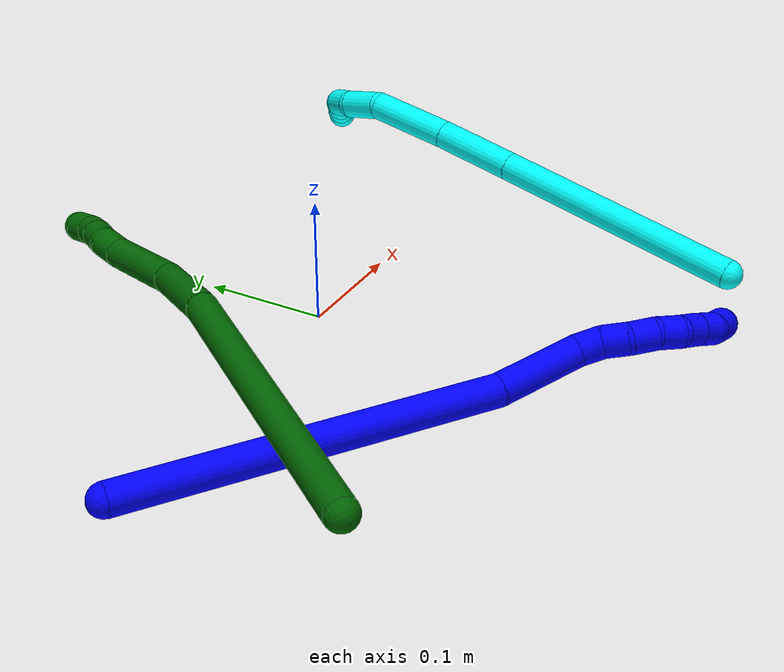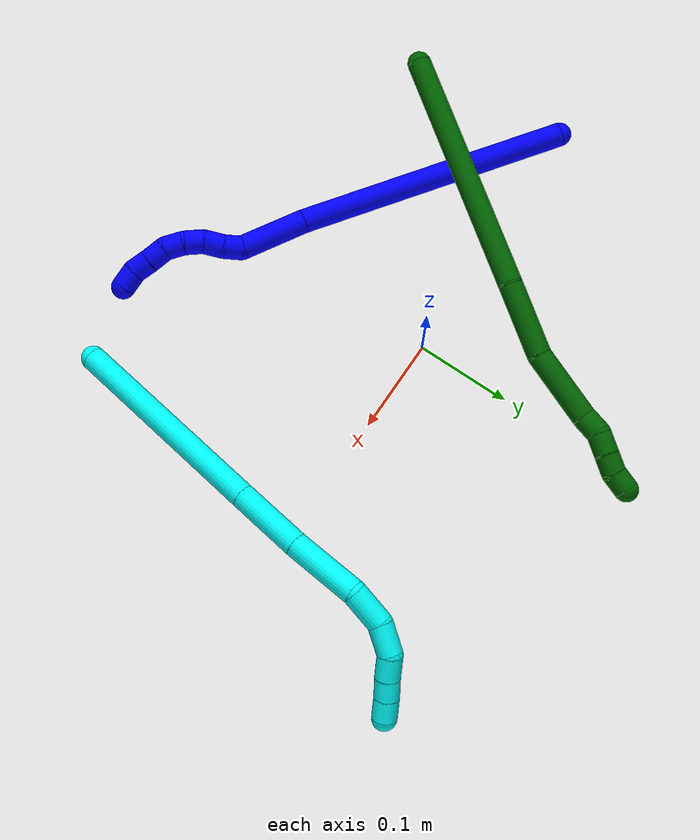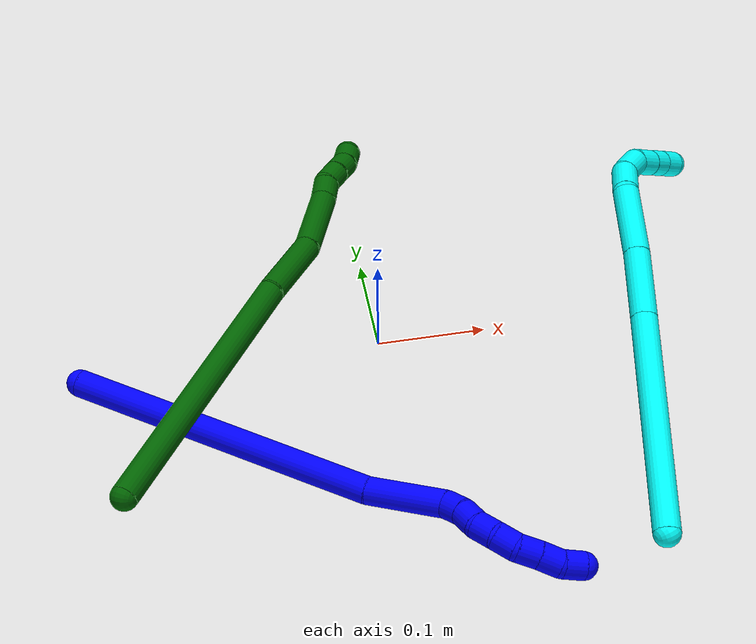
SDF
<sdf version="1.7">
 <world name="default">
  <model name="photoneo_s_sensor">
   <static>1</static>
   <pose>0 0 2 1.57079 1.57079 3.14159</pose>
   <link name="link">
    <inertial><mass>0.1</mass></inertial>
    <sensor name="sensor" type="depth">
     <update_rate>30</update_rate>
     <camera>
      <horizontal_fov>1.22</horizontal_fov>
      <image><width>1920</width><height>1200</height><format>B8G8R8</format></image>
      <clip><near>0.1</near><far>4</far></clip>
      <depth_camera><output>points</output></depth_camera>
     </camera>
     <plugin name="camera_plugin" filename="libgazebo_ros_depth_camera.so">
      <baseline>0.2</baseline>
      <alwaysOn>1</alwaysOn>
      <updateRate>0.0</updateRate>
      <cameraName>camera_ir</cameraName>
      <imageTopicName>/camera/color/image_raw</imageTopicName>
      <cameraInfoTopicName>/camera/color/camera_info</cameraInfoTopicName>
      <depthImageTopicName>/camera/depth/image_raw</depthImageTopicName>
      <depthImageCameraInfoTopicName>/camera/depth/camera_info</depthImageCameraInfoTopicName>
      <pointCloudTopicName>/camera/depth/points</pointCloudTopicName>
      <frameName>fr_optical</frameName>
      <pointCloudCutoff>0.1</pointCloudCutoff>
      <pointCloudCutoffMax>2.0</pointCloudCutoffMax>
      <distortionK1>0</distortionK1>
      <distortionK2>0</distortionK2>
      <distortionK3>0</distortionK3>
      <distortionT1>0</distortionT1>
      <distortionT2>0</distortionT2>
      <CxPrime>0</CxPrime>
      <Cx>0</Cx>
      <Cy>0</Cy>
      <focalLength>0</focalLength>
      <hackBaseline>0</hackBaseline>
     </plugin>
    </sensor>
   </link>
  </model>
  <model name="1">
   <static>0</static>
   <link name="1">
    <collision name="collision-cylinder-e_1_1_4">
     <pose>0.105713 -0.023299 -0.095323 2.90187 0.822584 2.60277</pose>
     <geometry><cylinder><radius>0.0125</radius><length>0.288475</length></cylinder></geometry>
     <surface>
      <friction><ode><mu>1.16</mu><mu2>1.16</mu2><slip1>0</slip1><slip2>0</slip2></ode></friction>
      <contact><ode><kp>1e+06</kp><kd>1</kd><max_vel>0</max_vel><min_depth>0.001</min_depth></ode></contact>
     </surface>
    </collision>
    <visual name="visual-cylinder-e_1_1_4">
     <pose>0.105713 -0.023299 -0.095323 2.90187 0.822584 2.60277</pose>
     <geometry><cylinder><radius>0.0125</radius><length>0.288475</length></cylinder></geometry>
     <material><ambient>0 0 1 1</ambient></material>
    </visual>
    <collision name="collision-cylinder-e_2_4_5">
     <pose>0.234466 -0.057752 -0.215594 2.72114 0.700489 2.08428</pose>
     <geometry><cylinder><radius>0.0125</radius><length>0.071491</length></cylinder></geometry>
     <surface>
      <friction><ode><mu>1.16</mu><mu2>1.16</mu2><slip1>0</slip1><slip2>0</slip2></ode></friction>
      <contact><ode><kp>1e+06</kp><kd>1</kd><max_vel>0</max_vel><min_depth>0.001</min_depth></ode></contact>
     </surface>
    </collision>
    <visual name="visual-cylinder-e_2_4_5">
     <pose>0.234466 -0.057752 -0.215594 2.72114 0.700489 2.08428</pose>
     <geometry><cylinder><radius>0.0125</radius><length>0.071491</length></cylinder></geometry>
     <material><ambient>0 0 1 1</ambient></material>
    </visual>
    <collision name="collision-cylinder-e_3_5_6">
     <pose>0.261924 -0.068195 -0.249502 -3.06228 0.456721 -2.8034</pose>
     <geometry><cylinder><radius>0.0125</radius><length>0.020028</length></cylinder></geometry>
     <surface>
      <friction><ode><mu>1.16</mu><mu2>1.16</mu2><slip1>0</slip1><slip2>0</slip2></ode></friction>
      <contact><ode><kp>1e+06</kp><kd>1</kd><max_vel>0</max_vel><min_depth>0.001</min_depth></ode></contact>
     </surface>
    </collision>
    <visual name="visual-cylinder-e_3_5_6">
     <pose>0.261924 -0.068195 -0.249502 -3.06228 0.456721 -2.8034</pose>
     <geometry><cylinder><radius>0.0125</radius><length>0.020028</length></cylinder></geometry>
     <material><ambient>0 0 1 1</ambient></material>
    </visual>
    <collision name="collision-cylinder-e_4_6_7">
     <pose>0.270888 -0.064438 -0.266832 -2.79275 0.472035 -1.87693</pose>
     <geometry><cylinder><radius>0.0125</radius><length>0.020003</length></cylinder></geometry>
     <surface>
      <friction><ode><mu>1.16</mu><mu2>1.16</mu2><slip1>0</slip1><slip2>0</slip2></ode></friction>
      <contact><ode><kp>1e+06</kp><kd>1</kd><max_vel>0</max_vel><min_depth>0.001</min_depth></ode></contact>
     </surface>
    </collision>
    <visual name="visual-cylinder-e_4_6_7">
     <pose>0.270888 -0.064438 -0.266832 -2.79275 0.472035 -1.87693</pose>
     <geometry><cylinder><radius>0.0125</radius><length>0.020003</length></cylinder></geometry>
     <material><ambient>0 0 1 1</ambient></material>
    </visual>
    <collision name="collision-cylinder-e_5_7_8">
     <pose>0.281805 -0.060933 -0.282899 -3.08183 0.690535 -2.97578</pose>
     <geometry><cylinder><radius>0.0125</radius><length>0.02</length></cylinder></geometry>
     <surface>
      <friction><ode><mu>1.16</mu><mu2>1.16</mu2><slip1>0</slip1><slip2>0</slip2></ode></friction>
      <contact><ode><kp>1e+06</kp><kd>1</kd><max_vel>0</max_vel><min_depth>0.001</min_depth></ode></contact>
     </surface>
    </collision>
    <visual name="visual-cylinder-e_5_7_8">
     <pose>0.281805 -0.060933 -0.282899 -3.08183 0.690535 -2.97578</pose>
     <geometry><cylinder><radius>0.0125</radius><length>0.02</length></cylinder></geometry>
     <material><ambient>0 0 1 1</ambient></material>
    </visual>
    <collision name="collision-cylinder-e_6_8_9">
     <pose>0.296319 -0.060786 -0.296389 3.08754 0.951743 3.03679</pose>
     <geometry><cylinder><radius>0.0125</radius><length>0.020002</length></cylinder></geometry>
     <surface>
      <friction><ode><mu>1.16</mu><mu2>1.16</mu2><slip1>0</slip1><slip2>0</slip2></ode></friction>
      <contact><ode><kp>1e+06</kp><kd>1</kd><max_vel>0</max_vel><min_depth>0.001</min_depth></ode></contact>
     </surface>
    </collision>
    <visual name="visual-cylinder-e_6_8_9">
     <pose>0.296319 -0.060786 -0.296389 3.08754 0.951743 3.03679</pose>
     <geometry><cylinder><radius>0.0125</radius><length>0.020002</length></cylinder></geometry>
     <material><ambient>0 0 1 1</ambient></material>
    </visual>
    <collision name="collision-cylinder-e_7_9_10">
     <pose>0.313298 -0.064225 -0.305677 2.41183 1.08288 2.00983</pose>
     <geometry><cylinder><radius>0.0125</radius><length>0.02</length></cylinder></geometry>
     <surface>
      <friction><ode><mu>1.16</mu><mu2>1.16</mu2><slip1>0</slip1><slip2>0</slip2></ode></friction>
      <contact><ode><kp>1e+06</kp><kd>1</kd><max_vel>0</max_vel><min_depth>0.001</min_depth></ode></contact>
     </surface>
    </collision>
    <visual name="visual-cylinder-e_7_9_10">
     <pose>0.313298 -0.064225 -0.305677 2.41183 1.08288 2.00983</pose>
     <geometry><cylinder><radius>0.0125</radius><length>0.02</length></cylinder></geometry>
     <material><ambient>0 0 1 1</ambient></material>
    </visual>
    <collision name="collision-cylinder-e_8_10_11">
     <pose>0.331128 -0.069825 -0.312769 2.53903 1.1189 2.22032</pose>
     <geometry><cylinder><radius>0.0125</radius><length>0.02</length></cylinder></geometry>
     <surface>
      <friction><ode><mu>1.16</mu><mu2>1.16</mu2><slip1>0</slip1><slip2>0</slip2></ode></friction>
      <contact><ode><kp>1e+06</kp><kd>1</kd><max_vel>0</max_vel><min_depth>0.001</min_depth></ode></contact>
     </surface>
    </collision>
    <visual name="visual-cylinder-e_8_10_11">
     <pose>0.331128 -0.069825 -0.312769 2.53903 1.1189 2.22032</pose>
     <geometry><cylinder><radius>0.0125</radius><length>0.02</length></cylinder></geometry>
     <material><ambient>0 0 1 1</ambient></material>
    </visual>
    <collision name="collision-cylinder-e_9_11_2">
     <pose>0.348244 -0.077812 -0.318287 1.90602 0.94759 1.25016</pose>
     <geometry><cylinder><radius>0.0125</radius><length>0.02</length></cylinder></geometry>
     <surface>
      <friction><ode><mu>1.16</mu><mu2>1.16</mu2><slip1>0</slip1><slip2>0</slip2></ode></friction>
      <contact><ode><kp>1e+06</kp><kd>1</kd><max_vel>0</max_vel><min_depth>0.001</min_depth></ode></contact>
     </surface>
    </collision>
    <visual name="visual-cylinder-e_9_11_2">
     <pose>0.348244 -0.077812 -0.318287 1.90602 0.94759 1.25016</pose>
     <geometry><cylinder><radius>0.0125</radius><length>0.02</length></cylinder></geometry>
     <material><ambient>0 0 1 1</ambient></material>
    </visual>
    <collision name="collision-sphere-2">
     <pose>0.356365 -0.083324 -0.320207 0 -0 0</pose>
     <geometry><sphere><radius>0.0125</radius></sphere></geometry>
     <surface>
      <friction><ode><mu>1.16</mu><mu2>1.16</mu2><slip1>0</slip1><slip2>0</slip2></ode></friction>
      <contact><ode><kp>1e+06</kp><kd>1</kd><max_vel>0</max_vel><min_depth>0.001</min_depth></ode></contact>
     </surface>
    </collision>
    <visual name="visual-sphere-2">
     <pose>0.356365 -0.083324 -0.320207 0 -0 0</pose>
     <geometry><sphere><radius>0.0125</radius></sphere></geometry>
     <material><ambient>0 0 1 1</ambient></material>
    </visual>
    <collision name="collision-sphere-11">
     <pose>0.340124 -0.0723 -0.316367 0 -0 0</pose>
     <geometry><sphere><radius>0.0125</radius></sphere></geometry>
     <surface>
      <friction><ode><mu>1.16</mu><mu2>1.16</mu2><slip1>0</slip1><slip2>0</slip2></ode></friction>
      <contact><ode><kp>1e+06</kp><kd>1</kd><max_vel>0</max_vel><min_depth>0.001</min_depth></ode></contact>
     </surface>
    </collision>
    <visual name="visual-sphere-11">
     <pose>0.340124 -0.0723 -0.316367 0 -0 0</pose>
     <geometry><sphere><radius>0.0125</radius></sphere></geometry>
     <material><ambient>0 0 1 1</ambient></material>
    </visual>
    <collision name="collision-sphere-10">
     <pose>0.322131 -0.06735 -0.309171 0 -0 0</pose>
     <geometry><sphere><radius>0.0125</radius></sphere></geometry>
     <surface>
      <friction><ode><mu>1.16</mu><mu2>1.16</mu2><slip1>0</slip1><slip2>0</slip2></ode></friction>
      <contact><ode><kp>1e+06</kp><kd>1</kd><max_vel>0</max_vel><min_depth>0.001</min_depth></ode></contact>
     </surface>
    </collision>
    <visual name="visual-sphere-10">
     <pose>0.322131 -0.06735 -0.309171 0 -0 0</pose>
     <geometry><sphere><radius>0.0125</radius></sphere></geometry>
     <material><ambient>0 0 1 1</ambient></material>
    </visual>
    <collision name="collision-sphere-9">
     <pose>0.304464 -0.0611 -0.302183 0 -0 0</pose>
     <geometry><sphere><radius>0.0125</radius></sphere></geometry>
     <surface>
      <friction><ode><mu>1.16</mu><mu2>1.16</mu2><slip1>0</slip1><slip2>0</slip2></ode></friction>
      <contact><ode><kp>1e+06</kp><kd>1</kd><max_vel>0</max_vel><min_depth>0.001</min_depth></ode></contact>
     </surface>
    </collision>
    <visual name="visual-sphere-9">
     <pose>0.304464 -0.0611 -0.302183 0 -0 0</pose>
     <geometry><sphere><radius>0.0125</radius></sphere></geometry>
     <material><ambient>0 0 1 1</ambient></material>
    </visual>
    <collision name="collision-sphere-4">
     <pose>0.211425 -0.046598 -0.190646 0 -0 0</pose>
     <geometry><sphere><radius>0.0125</radius></sphere></geometry>
     <surface>
      <friction><ode><mu>1.16</mu><mu2>1.16</mu2><slip1>0</slip1><slip2>0</slip2></ode></friction>
      <contact><ode><kp>1e+06</kp><kd>1</kd><max_vel>0</max_vel><min_depth>0.001</min_depth></ode></contact>
     </surface>
    </collision>
    <visual name="visual-sphere-4">
     <pose>0.211425 -0.046598 -0.190646 0 -0 0</pose>
     <geometry><sphere><radius>0.0125</radius></sphere></geometry>
     <material><ambient>0 0 1 1</ambient></material>
    </visual>
    <collision name="collision-sphere-1">
     <geometry><sphere><radius>0.0125</radius></sphere></geometry>
     <surface>
      <friction><ode><mu>1.16</mu><mu2>1.16</mu2><slip1>0</slip1><slip2>0</slip2></ode></friction>
      <contact><ode><kp>1e+06</kp><kd>1</kd><max_vel>0</max_vel><min_depth>0.001</min_depth></ode></contact>
     </surface>
    </collision>
    <visual name="visual-sphere-1">
     <geometry><sphere><radius>0.0125</radius></sphere></geometry>
     <material><ambient>0 0 1 1</ambient></material>
    </visual>
    <collision name="collision-sphere-8">
     <pose>0.288174 -0.060473 -0.290594 0 -0 0</pose>
     <geometry><sphere><radius>0.0125</radius></sphere></geometry>
     <surface>
      <friction><ode><mu>1.16</mu><mu2>1.16</mu2><slip1>0</slip1><slip2>0</slip2></ode></friction>
      <contact><ode><kp>1e+06</kp><kd>1</kd><max_vel>0</max_vel><min_depth>0.001</min_depth></ode></contact>
     </surface>
    </collision>
    <visual name="visual-sphere-8">
     <pose>0.288174 -0.060473 -0.290594 0 -0 0</pose>
     <geometry><sphere><radius>0.0125</radius></sphere></geometry>
     <material><ambient>0 0 1 1</ambient></material>
    </visual>
    <collision name="collision-sphere-5">
     <pose>0.257507 -0.068907 -0.240542 0 -0 0</pose>
     <geometry><sphere><radius>0.0125</radius></sphere></geometry>
     <surface>
      <friction><ode><mu>1.16</mu><mu2>1.16</mu2><slip1>0</slip1><slip2>0</slip2></ode></friction>
      <contact><ode><kp>1e+06</kp><kd>1</kd><max_vel>0</max_vel><min_depth>0.001</min_depth></ode></contact>
     </surface>
    </collision>
    <visual name="visual-sphere-5">
     <pose>0.257507 -0.068907 -0.240542 0 -0 0</pose>
     <geometry><sphere><radius>0.0125</radius></sphere></geometry>
     <material><ambient>0 0 1 1</ambient></material>
    </visual>
    <collision name="collision-sphere-6">
     <pose>0.26634 -0.067483 -0.258461 0 -0 0</pose>
     <geometry><sphere><radius>0.0125</radius></sphere></geometry>
     <surface>
      <friction><ode><mu>1.16</mu><mu2>1.16</mu2><slip1>0</slip1><slip2>0</slip2></ode></friction>
      <contact><ode><kp>1e+06</kp><kd>1</kd><max_vel>0</max_vel><min_depth>0.001</min_depth></ode></contact>
     </surface>
    </collision>
    <visual name="visual-sphere-6">
     <pose>0.26634 -0.067483 -0.258461 0 -0 0</pose>
     <geometry><sphere><radius>0.0125</radius></sphere></geometry>
     <material><ambient>0 0 1 1</ambient></material>
    </visual>
    <collision name="collision-sphere-7">
     <pose>0.275435 -0.061393 -0.275203 0 -0 0</pose>
     <geometry><sphere><radius>0.0125</radius></sphere></geometry>
     <surface>
      <friction><ode><mu>1.16</mu><mu2>1.16</mu2><slip1>0</slip1><slip2>0</slip2></ode></friction>
      <contact><ode><kp>1e+06</kp><kd>1</kd><max_vel>0</max_vel><min_depth>0.001</min_depth></ode></contact>
     </surface>
    </collision>
    <visual name="visual-sphere-7">
     <pose>0.275435 -0.061393 -0.275203 0 -0 0</pose>
     <geometry><sphere><radius>0.0125</radius></sphere></geometry>
     <material><ambient>0 0 1 1</ambient></material>
    </visual>
    <inertial>
     <pose>0.178678 -0.040353 -0.167134 0 -0 0</pose>
     <mass>0.5</mass>
     <inertia>
      <ixx>-0.000439</ixx>
      <ixy>0</ixy>
      <ixz>0</ixz>
      <iyy>0.002606</iyy>
      <iyz>0</iyz>
      <izz>-0.001192</izz>
     </inertia>
    </inertial>
   </link>
   <pose>-0.275614 -0.008357 0.0115 -2.81852 0.743633 -0.566054</pose>
  </model>
  <model name="3">
   <static>0</static>
   <link name="3">
    <collision name="collision-cylinder-e_1_1_4">
     <pose>0.070986 0.05967 -0.058057 -2.3425 0.706034 -1.43491</pose>
     <geometry><cylinder><radius>0.0125</radius><length>0.218817</length></cylinder></geometry>
     <surface>
      <friction><ode><mu>1.16</mu><mu2>1.16</mu2><slip1>0</slip1><slip2>0</slip2></ode></friction>
      <contact><ode><kp>1e+06</kp><kd>1</kd><max_vel>0</max_vel><min_depth>0.001</min_depth></ode></contact>
     </surface>
    </collision>
    <visual name="visual-cylinder-e_1_1_4">
     <pose>0.070986 0.05967 -0.058057 -2.3425 0.706034 -1.43491</pose>
     <geometry><cylinder><radius>0.0125</radius><length>0.218817</length></cylinder></geometry>
     <material><ambient>0.003922 1 0.996078 1</ambient></material>
    </visual>
    <collision name="collision-cylinder-e_2_4_5">
     <pose>0.1655 0.139206 -0.135211 -2.33642 0.706686 -1.42752</pose>
     <geometry><cylinder><radius>0.0125</radius><length>0.072468</length></cylinder></geometry>
     <surface>
      <friction><ode><mu>1.16</mu><mu2>1.16</mu2><slip1>0</slip1><slip2>0</slip2></ode></friction>
      <contact><ode><kp>1e+06</kp><kd>1</kd><max_vel>0</max_vel><min_depth>0.001</min_depth></ode></contact>
     </surface>
    </collision>
    <visual name="visual-cylinder-e_2_4_5">
     <pose>0.1655 0.139206 -0.135211 -2.33642 0.706686 -1.42752</pose>
     <geometry><cylinder><radius>0.0125</radius><length>0.072468</length></cylinder></geometry>
     <material><ambient>0.003922 1 0.996078 1</ambient></material>
    </visual>
    <collision name="collision-cylinder-e_3_5_6">
     <pose>0.213237 0.179994 -0.172021 -2.27336 0.723434 -1.36899</pose>
     <geometry><cylinder><radius>0.0125</radius><length>0.073146</length></cylinder></geometry>
     <surface>
      <friction><ode><mu>1.16</mu><mu2>1.16</mu2><slip1>0</slip1><slip2>0</slip2></ode></friction>
      <contact><ode><kp>1e+06</kp><kd>1</kd><max_vel>0</max_vel><min_depth>0.001</min_depth></ode></contact>
     </surface>
    </collision>
    <visual name="visual-cylinder-e_3_5_6">
     <pose>0.213237 0.179994 -0.172021 -2.27336 0.723434 -1.36899</pose>
     <geometry><cylinder><radius>0.0125</radius><length>0.073146</length></cylinder></geometry>
     <material><ambient>0.003922 1 0.996078 1</ambient></material>
    </visual>
    <collision name="collision-cylinder-e_4_6_7">
     <pose>0.243289 0.214977 -0.20083 -2.23884 0.315276 -0.633726</pose>
     <geometry><cylinder><radius>0.0125</radius><length>0.037682</length></cylinder></geometry>
     <surface>
      <friction><ode><mu>1.16</mu><mu2>1.16</mu2><slip1>0</slip1><slip2>0</slip2></ode></friction>
      <contact><ode><kp>1e+06</kp><kd>1</kd><max_vel>0</max_vel><min_depth>0.001</min_depth></ode></contact>
     </surface>
    </collision>
    <visual name="visual-cylinder-e_4_6_7">
     <pose>0.243289 0.214977 -0.20083 -2.23884 0.315276 -0.633726</pose>
     <geometry><cylinder><radius>0.0125</radius><length>0.037682</length></cylinder></geometry>
     <material><ambient>0.003922 1 0.996078 1</ambient></material>
    </visual>
    <collision name="collision-cylinder-e_5_7_8">
     <pose>0.250057 0.237802 -0.224822 -2.54476 0.059291 -0.192216</pose>
     <geometry><cylinder><radius>0.0125</radius><length>0.03124</length></cylinder></geometry>
     <surface>
      <friction><ode><mu>1.16</mu><mu2>1.16</mu2><slip1>0</slip1><slip2>0</slip2></ode></friction>
      <contact><ode><kp>1e+06</kp><kd>1</kd><max_vel>0</max_vel><min_depth>0.001</min_depth></ode></contact>
     </surface>
    </collision>
    <visual name="visual-cylinder-e_5_7_8">
     <pose>0.250057 0.237802 -0.224822 -2.54476 0.059291 -0.192216</pose>
     <geometry><cylinder><radius>0.0125</radius><length>0.03124</length></cylinder></geometry>
     <material><ambient>0.003922 1 0.996078 1</ambient></material>
    </visual>
    <collision name="collision-cylinder-e_6_8_9">
     <pose>0.246451 0.251348 -0.247832 -2.69986 -0.384951 1.42969</pose>
     <geometry><cylinder><radius>0.0125</radius><length>0.024138</length></cylinder></geometry>
     <surface>
      <friction><ode><mu>1.16</mu><mu2>1.16</mu2><slip1>0</slip1><slip2>0</slip2></ode></friction>
      <contact><ode><kp>1e+06</kp><kd>1</kd><max_vel>0</max_vel><min_depth>0.001</min_depth></ode></contact>
     </surface>
    </collision>
    <visual name="visual-cylinder-e_6_8_9">
     <pose>0.246451 0.251348 -0.247832 -2.69986 -0.384951 1.42969</pose>
     <geometry><cylinder><radius>0.0125</radius><length>0.024138</length></cylinder></geometry>
     <material><ambient>0.003922 1 0.996078 1</ambient></material>
    </visual>
    <collision name="collision-cylinder-e_7_9_10">
     <pose>0.238417 0.260737 -0.266527 -2.64895 -0.345004 1.212</pose>
     <geometry><cylinder><radius>0.0125</radius><length>0.020703</length></cylinder></geometry>
     <surface>
      <friction><ode><mu>1.16</mu><mu2>1.16</mu2><slip1>0</slip1><slip2>0</slip2></ode></friction>
      <contact><ode><kp>1e+06</kp><kd>1</kd><max_vel>0</max_vel><min_depth>0.001</min_depth></ode></contact>
     </surface>
    </collision>
    <visual name="visual-cylinder-e_7_9_10">
     <pose>0.238417 0.260737 -0.266527 -2.64895 -0.345004 1.212</pose>
     <geometry><cylinder><radius>0.0125</radius><length>0.020703</length></cylinder></geometry>
     <material><ambient>0.003922 1 0.996078 1</ambient></material>
    </visual>
    <collision name="collision-cylinder-e_8_10_2">
     <pose>0.230844 0.26966 -0.284257 -2.70077 -0.382791 1.42609</pose>
     <geometry><cylinder><radius>0.0125</radius><length>0.021806</length></cylinder></geometry>
     <surface>
      <friction><ode><mu>1.16</mu><mu2>1.16</mu2><slip1>0</slip1><slip2>0</slip2></ode></friction>
      <contact><ode><kp>1e+06</kp><kd>1</kd><max_vel>0</max_vel><min_depth>0.001</min_depth></ode></contact>
     </surface>
    </collision>
    <visual name="visual-cylinder-e_8_10_2">
     <pose>0.230844 0.26966 -0.284257 -2.70077 -0.382791 1.42609</pose>
     <geometry><cylinder><radius>0.0125</radius><length>0.021806</length></cylinder></geometry>
     <material><ambient>0.003922 1 0.996078 1</ambient></material>
    </visual>
    <collision name="collision-sphere-2">
     <pose>0.226772 0.273975 -0.293405 0 -0 0</pose>
     <geometry><sphere><radius>0.0125</radius></sphere></geometry>
     <surface>
      <friction><ode><mu>1.16</mu><mu2>1.16</mu2><slip1>0</slip1><slip2>0</slip2></ode></friction>
      <contact><ode><kp>1e+06</kp><kd>1</kd><max_vel>0</max_vel><min_depth>0.001</min_depth></ode></contact>
     </surface>
    </collision>
    <visual name="visual-sphere-2">
     <pose>0.226772 0.273975 -0.293405 0 -0 0</pose>
     <geometry><sphere><radius>0.0125</radius></sphere></geometry>
     <material><ambient>0.003922 1 0.996078 1</ambient></material>
    </visual>
    <collision name="collision-sphere-10">
     <pose>0.234917 0.265344 -0.27511 0 -0 0</pose>
     <geometry><sphere><radius>0.0125</radius></sphere></geometry>
     <surface>
      <friction><ode><mu>1.16</mu><mu2>1.16</mu2><slip1>0</slip1><slip2>0</slip2></ode></friction>
      <contact><ode><kp>1e+06</kp><kd>1</kd><max_vel>0</max_vel><min_depth>0.001</min_depth></ode></contact>
     </surface>
    </collision>
    <visual name="visual-sphere-10">
     <pose>0.234917 0.265344 -0.27511 0 -0 0</pose>
     <geometry><sphere><radius>0.0125</radius></sphere></geometry>
     <material><ambient>0.003922 1 0.996078 1</ambient></material>
    </visual>
    <collision name="collision-sphere-9">
     <pose>0.241918 0.25613 -0.257944 0 -0 0</pose>
     <geometry><sphere><radius>0.0125</radius></sphere></geometry>
     <surface>
      <friction><ode><mu>1.16</mu><mu2>1.16</mu2><slip1>0</slip1><slip2>0</slip2></ode></friction>
      <contact><ode><kp>1e+06</kp><kd>1</kd><max_vel>0</max_vel><min_depth>0.001</min_depth></ode></contact>
     </surface>
    </collision>
    <visual name="visual-sphere-9">
     <pose>0.241918 0.25613 -0.257944 0 -0 0</pose>
     <geometry><sphere><radius>0.0125</radius></sphere></geometry>
     <material><ambient>0.003922 1 0.996078 1</ambient></material>
    </visual>
    <collision name="collision-sphere-4">
     <pose>0.141973 0.119339 -0.116115 0 -0 0</pose>
     <geometry><sphere><radius>0.0125</radius></sphere></geometry>
     <surface>
      <friction><ode><mu>1.16</mu><mu2>1.16</mu2><slip1>0</slip1><slip2>0</slip2></ode></friction>
      <contact><ode><kp>1e+06</kp><kd>1</kd><max_vel>0</max_vel><min_depth>0.001</min_depth></ode></contact>
     </surface>
    </collision>
    <visual name="visual-sphere-4">
     <pose>0.141973 0.119339 -0.116115 0 -0 0</pose>
     <geometry><sphere><radius>0.0125</radius></sphere></geometry>
     <material><ambient>0.003922 1 0.996078 1</ambient></material>
    </visual>
    <collision name="collision-sphere-1">
     <geometry><sphere><radius>0.0125</radius></sphere></geometry>
     <surface>
      <friction><ode><mu>1.16</mu><mu2>1.16</mu2><slip1>0</slip1><slip2>0</slip2></ode></friction>
      <contact><ode><kp>1e+06</kp><kd>1</kd><max_vel>0</max_vel><min_depth>0.001</min_depth></ode></contact>
     </surface>
    </collision>
    <visual name="visual-sphere-1">
     <geometry><sphere><radius>0.0125</radius></sphere></geometry>
     <material><ambient>0.003922 1 0.996078 1</ambient></material>
    </visual>
    <collision name="collision-sphere-8">
     <pose>0.250983 0.246566 -0.237719 0 -0 0</pose>
     <geometry><sphere><radius>0.0125</radius></sphere></geometry>
     <surface>
      <friction><ode><mu>1.16</mu><mu2>1.16</mu2><slip1>0</slip1><slip2>0</slip2></ode></friction>
      <contact><ode><kp>1e+06</kp><kd>1</kd><max_vel>0</max_vel><min_depth>0.001</min_depth></ode></contact>
     </surface>
    </collision>
    <visual name="visual-sphere-8">
     <pose>0.250983 0.246566 -0.237719 0 -0 0</pose>
     <geometry><sphere><radius>0.0125</radius></sphere></geometry>
     <material><ambient>0.003922 1 0.996078 1</ambient></material>
    </visual>
    <collision name="collision-sphere-5">
     <pose>0.189028 0.159073 -0.154307 0 -0 0</pose>
     <geometry><sphere><radius>0.0125</radius></sphere></geometry>
     <surface>
      <friction><ode><mu>1.16</mu><mu2>1.16</mu2><slip1>0</slip1><slip2>0</slip2></ode></friction>
      <contact><ode><kp>1e+06</kp><kd>1</kd><max_vel>0</max_vel><min_depth>0.001</min_depth></ode></contact>
     </surface>
    </collision>
    <visual name="visual-sphere-5">
     <pose>0.189028 0.159073 -0.154307 0 -0 0</pose>
     <geometry><sphere><radius>0.0125</radius></sphere></geometry>
     <material><ambient>0.003922 1 0.996078 1</ambient></material>
    </visual>
    <collision name="collision-sphere-6">
     <pose>0.237447 0.200915 -0.189734 0 -0 0</pose>
     <geometry><sphere><radius>0.0125</radius></sphere></geometry>
     <surface>
      <friction><ode><mu>1.16</mu><mu2>1.16</mu2><slip1>0</slip1><slip2>0</slip2></ode></friction>
      <contact><ode><kp>1e+06</kp><kd>1</kd><max_vel>0</max_vel><min_depth>0.001</min_depth></ode></contact>
     </surface>
    </collision>
    <visual name="visual-sphere-6">
     <pose>0.237447 0.200915 -0.189734 0 -0 0</pose>
     <geometry><sphere><radius>0.0125</radius></sphere></geometry>
     <material><ambient>0.003922 1 0.996078 1</ambient></material>
    </visual>
    <collision name="collision-sphere-7">
     <pose>0.249131 0.229039 -0.211925 0 -0 0</pose>
     <geometry><sphere><radius>0.0125</radius></sphere></geometry>
     <surface>
      <friction><ode><mu>1.16</mu><mu2>1.16</mu2><slip1>0</slip1><slip2>0</slip2></ode></friction>
      <contact><ode><kp>1e+06</kp><kd>1</kd><max_vel>0</max_vel><min_depth>0.001</min_depth></ode></contact>
     </surface>
    </collision>
    <visual name="visual-sphere-7">
     <pose>0.249131 0.229039 -0.211925 0 -0 0</pose>
     <geometry><sphere><radius>0.0125</radius></sphere></geometry>
     <material><ambient>0.003922 1 0.996078 1</ambient></material>
    </visual>
    <inertial>
     <pose>0.152044 0.138371 -0.13475 0 -0 0</pose>
     <mass>0.5</mass>
     <inertia>
      <ixx>-0.000589</ixx>
      <ixy>0</ixy>
      <ixz>0</ixz>
      <iyy>-0.000351</iyy>
      <iyz>0</iyz>
      <izz>-0.00117</izz>
     </inertia>
    </inertial>
   </link>
   <pose>0.200382 -0.267785 0.012821 -1.56604 -0.881204 1.96984</pose>
  </model>
  <model name="6">
   <static>0</static>
   <link name="6">
    <collision name="collision-cylinder-e_1_1_4">
     <pose>0.021708 0.129266 0.007435 -1.51334 0.16611 -0.15687</pose>
     <geometry><cylinder><radius>0.0125</radius><length>0.262573</length></cylinder></geometry>
     <surface>
      <friction><ode><mu>1.16</mu><mu2>1.16</mu2><slip1>0</slip1><slip2>0</slip2></ode></friction>
      <contact><ode><kp>1e+06</kp><kd>1</kd><max_vel>0</max_vel><min_depth>0.001</min_depth></ode></contact>
     </surface>
    </collision>
    <visual name="visual-cylinder-e_1_1_4">
     <pose>0.021708 0.129266 0.007435 -1.51334 0.16611 -0.15687</pose>
     <geometry><cylinder><radius>0.0125</radius><length>0.262573</length></cylinder></geometry>
     <material><ambient>0 0.392157 0.003922 1</ambient></material>
    </visual>
    <collision name="collision-cylinder-e_2_4_5">
     <pose>0.043236 0.296863 0.020134 -1.43431 -0.004653 0.004057</pose>
     <geometry><cylinder><radius>0.0125</radius><length>0.077384</length></cylinder></geometry>
     <surface>
      <friction><ode><mu>1.16</mu><mu2>1.16</mu2><slip1>0</slip1><slip2>0</slip2></ode></friction>
      <contact><ode><kp>1e+06</kp><kd>1</kd><max_vel>0</max_vel><min_depth>0.001</min_depth></ode></contact>
     </surface>
    </collision>
    <visual name="visual-cylinder-e_2_4_5">
     <pose>0.043236 0.296863 0.020134 -1.43431 -0.004653 0.004057</pose>
     <geometry><cylinder><radius>0.0125</radius><length>0.077384</length></cylinder></geometry>
     <material><ambient>0 0.392157 0.003922 1</ambient></material>
    </visual>
    <collision name="collision-cylinder-e_3_5_6">
     <pose>0.047049 0.370649 0.038301 -1.22179 0.105443 -0.073872</pose>
     <geometry><cylinder><radius>0.0125</radius><length>0.07588</length></cylinder></geometry>
     <surface>
      <friction><ode><mu>1.16</mu><mu2>1.16</mu2><slip1>0</slip1><slip2>0</slip2></ode></friction>
      <contact><ode><kp>1e+06</kp><kd>1</kd><max_vel>0</max_vel><min_depth>0.001</min_depth></ode></contact>
     </surface>
    </collision>
    <visual name="visual-cylinder-e_3_5_6">
     <pose>0.047049 0.370649 0.038301 -1.22179 0.105443 -0.073872</pose>
     <geometry><cylinder><radius>0.0125</radius><length>0.07588</length></cylinder></geometry>
     <material><ambient>0 0.392157 0.003922 1</ambient></material>
    </visual>
    <collision name="collision-cylinder-e_4_6_7">
     <pose>0.054504 0.415807 0.054938 -1.20332 0.321395 -0.221671</pose>
     <geometry><cylinder><radius>0.0125</radius><length>0.021917</length></cylinder></geometry>
     <surface>
      <friction><ode><mu>1.16</mu><mu2>1.16</mu2><slip1>0</slip1><slip2>0</slip2></ode></friction>
      <contact><ode><kp>1e+06</kp><kd>1</kd><max_vel>0</max_vel><min_depth>0.001</min_depth></ode></contact>
     </surface>
    </collision>
    <visual name="visual-cylinder-e_4_6_7">
     <pose>0.054504 0.415807 0.054938 -1.20332 0.321395 -0.221671</pose>
     <geometry><cylinder><radius>0.0125</radius><length>0.021917</length></cylinder></geometry>
     <material><ambient>0 0.392157 0.003922 1</ambient></material>
    </visual>
    <collision name="collision-cylinder-e_5_7_8">
     <pose>0.057976 0.43637 0.059767 -1.47041 0.000949 -0.000858</pose>
     <geometry><cylinder><radius>0.0125</radius><length>0.02183</length></cylinder></geometry>
     <surface>
      <friction><ode><mu>1.16</mu><mu2>1.16</mu2><slip1>0</slip1><slip2>0</slip2></ode></friction>
      <contact><ode><kp>1e+06</kp><kd>1</kd><max_vel>0</max_vel><min_depth>0.001</min_depth></ode></contact>
     </surface>
    </collision>
    <visual name="visual-cylinder-e_5_7_8">
     <pose>0.057976 0.43637 0.059767 -1.47041 0.000949 -0.000858</pose>
     <geometry><cylinder><radius>0.0125</radius><length>0.02183</length></cylinder></geometry>
     <material><ambient>0 0.392157 0.003922 1</ambient></material>
    </visual>
    <collision name="collision-cylinder-e_6_8_9">
     <pose>0.057162 0.457267 0.062356 -1.42289 -0.08106 0.069887</pose>
     <geometry><cylinder><radius>0.0125</radius><length>0.020362</length></cylinder></geometry>
     <surface>
      <friction><ode><mu>1.16</mu><mu2>1.16</mu2><slip1>0</slip1><slip2>0</slip2></ode></friction>
      <contact><ode><kp>1e+06</kp><kd>1</kd><max_vel>0</max_vel><min_depth>0.001</min_depth></ode></contact>
     </surface>
    </collision>
    <visual name="visual-cylinder-e_6_8_9">
     <pose>0.057162 0.457267 0.062356 -1.42289 -0.08106 0.069887</pose>
     <geometry><cylinder><radius>0.0125</radius><length>0.020362</length></cylinder></geometry>
     <material><ambient>0 0.392157 0.003922 1</ambient></material>
    </visual>
    <collision name="collision-cylinder-e_7_9_2">
     <pose>0.05668 0.476491 0.067854 -1.15994 0.034219 -0.022419</pose>
     <geometry><cylinder><radius>0.0125</radius><length>0.020054</length></cylinder></geometry>
     <surface>
      <friction><ode><mu>1.16</mu><mu2>1.16</mu2><slip1>0</slip1><slip2>0</slip2></ode></friction>
      <contact><ode><kp>1e+06</kp><kd>1</kd><max_vel>0</max_vel><min_depth>0.001</min_depth></ode></contact>
     </surface>
    </collision>
    <visual name="visual-cylinder-e_7_9_2">
     <pose>0.05668 0.476491 0.067854 -1.15994 0.034219 -0.022419</pose>
     <geometry><cylinder><radius>0.0125</radius><length>0.020054</length></cylinder></geometry>
     <material><ambient>0 0.392157 0.003922 1</ambient></material>
    </visual>
    <collision name="collision-sphere-2">
     <pose>0.057023 0.485679 0.071857 0 -0 0</pose>
     <geometry><sphere><radius>0.0125</radius></sphere></geometry>
     <surface>
      <friction><ode><mu>1.16</mu><mu2>1.16</mu2><slip1>0</slip1><slip2>0</slip2></ode></friction>
      <contact><ode><kp>1e+06</kp><kd>1</kd><max_vel>0</max_vel><min_depth>0.001</min_depth></ode></contact>
     </surface>
    </collision>
    <visual name="visual-sphere-2">
     <pose>0.057023 0.485679 0.071857 0 -0 0</pose>
     <geometry><sphere><radius>0.0125</radius></sphere></geometry>
     <material><ambient>0 0.392157 0.003922 1</ambient></material>
    </visual>
    <collision name="collision-sphere-9">
     <pose>0.056337 0.467304 0.063852 0 -0 0</pose>
     <geometry><sphere><radius>0.0125</radius></sphere></geometry>
     <surface>
      <friction><ode><mu>1.16</mu><mu2>1.16</mu2><slip1>0</slip1><slip2>0</slip2></ode></friction>
      <contact><ode><kp>1e+06</kp><kd>1</kd><max_vel>0</max_vel><min_depth>0.001</min_depth></ode></contact>
     </surface>
    </collision>
    <visual name="visual-sphere-9">
     <pose>0.056337 0.467304 0.063852 0 -0 0</pose>
     <geometry><sphere><radius>0.0125</radius></sphere></geometry>
     <material><ambient>0 0.392157 0.003922 1</ambient></material>
    </visual>
    <collision name="collision-sphere-4">
     <pose>0.043416 0.258531 0.01487 0 -0 0</pose>
     <geometry><sphere><radius>0.0125</radius></sphere></geometry>
     <surface>
      <friction><ode><mu>1.16</mu><mu2>1.16</mu2><slip1>0</slip1><slip2>0</slip2></ode></friction>
      <contact><ode><kp>1e+06</kp><kd>1</kd><max_vel>0</max_vel><min_depth>0.001</min_depth></ode></contact>
     </surface>
    </collision>
    <visual name="visual-sphere-4">
     <pose>0.043416 0.258531 0.01487 0 -0 0</pose>
     <geometry><sphere><radius>0.0125</radius></sphere></geometry>
     <material><ambient>0 0.392157 0.003922 1</ambient></material>
    </visual>
    <collision name="collision-sphere-1">
     <geometry><sphere><radius>0.0125</radius></sphere></geometry>
     <surface>
      <friction><ode><mu>1.16</mu><mu2>1.16</mu2><slip1>0</slip1><slip2>0</slip2></ode></friction>
      <contact><ode><kp>1e+06</kp><kd>1</kd><max_vel>0</max_vel><min_depth>0.001</min_depth></ode></contact>
     </surface>
    </collision>
    <visual name="visual-sphere-1">
     <geometry><sphere><radius>0.0125</radius></sphere></geometry>
     <material><ambient>0 0.392157 0.003922 1</ambient></material>
    </visual>
    <collision name="collision-sphere-8">
     <pose>0.057986 0.44723 0.060861 0 -0 0</pose>
     <geometry><sphere><radius>0.0125</radius></sphere></geometry>
     <surface>
      <friction><ode><mu>1.16</mu><mu2>1.16</mu2><slip1>0</slip1><slip2>0</slip2></ode></friction>
      <contact><ode><kp>1e+06</kp><kd>1</kd><max_vel>0</max_vel><min_depth>0.001</min_depth></ode></contact>
     </surface>
    </collision>
    <visual name="visual-sphere-8">
     <pose>0.057986 0.44723 0.060861 0 -0 0</pose>
     <geometry><sphere><radius>0.0125</radius></sphere></geometry>
     <material><ambient>0 0.392157 0.003922 1</ambient></material>
    </visual>
    <collision name="collision-sphere-5">
     <pose>0.043056 0.335195 0.025399 0 -0 0</pose>
     <geometry><sphere><radius>0.0125</radius></sphere></geometry>
     <surface>
      <friction><ode><mu>1.16</mu><mu2>1.16</mu2><slip1>0</slip1><slip2>0</slip2></ode></friction>
      <contact><ode><kp>1e+06</kp><kd>1</kd><max_vel>0</max_vel><min_depth>0.001</min_depth></ode></contact>
     </surface>
    </collision>
    <visual name="visual-sphere-5">
     <pose>0.043056 0.335195 0.025399 0 -0 0</pose>
     <geometry><sphere><radius>0.0125</radius></sphere></geometry>
     <material><ambient>0 0.392157 0.003922 1</ambient></material>
    </visual>
    <collision name="collision-sphere-6">
     <pose>0.051042 0.406104 0.051203 0 -0 0</pose>
     <geometry><sphere><radius>0.0125</radius></sphere></geometry>
     <surface>
      <friction><ode><mu>1.16</mu><mu2>1.16</mu2><slip1>0</slip1><slip2>0</slip2></ode></friction>
      <contact><ode><kp>1e+06</kp><kd>1</kd><max_vel>0</max_vel><min_depth>0.001</min_depth></ode></contact>
     </surface>
    </collision>
    <visual name="visual-sphere-6">
     <pose>0.051042 0.406104 0.051203 0 -0 0</pose>
     <geometry><sphere><radius>0.0125</radius></sphere></geometry>
     <material><ambient>0 0.392157 0.003922 1</ambient></material>
    </visual>
    <collision name="collision-sphere-7">
     <pose>0.057965 0.42551 0.058673 0 -0 0</pose>
     <geometry><sphere><radius>0.0125</radius></sphere></geometry>
     <surface>
      <friction><ode><mu>1.16</mu><mu2>1.16</mu2><slip1>0</slip1><slip2>0</slip2></ode></friction>
      <contact><ode><kp>1e+06</kp><kd>1</kd><max_vel>0</max_vel><min_depth>0.001</min_depth></ode></contact>
     </surface>
    </collision>
    <visual name="visual-sphere-7">
     <pose>0.057965 0.42551 0.058673 0 -0 0</pose>
     <geometry><sphere><radius>0.0125</radius></sphere></geometry>
     <material><ambient>0 0.392157 0.003922 1</ambient></material>
    </visual>
    <inertial>
     <pose>0.034753 0.245089 0.023112 0 -0 0</pose>
     <mass>0.5</mass>
     <inertia>
      <ixx>0.001334</ixx>
      <ixy>0</ixy>
      <ixz>0</ixz>
      <iyy>-5.3e-05</iyy>
      <iyz>0</iyz>
      <izz>-0.00183</izz>
     </inertia>
    </inertial>
   </link>
   <pose>-0.247397 -0.169228 0.042853 -2.63655 -1.28011 1.92668</pose>
  </model>
 </world>
</sdf>
